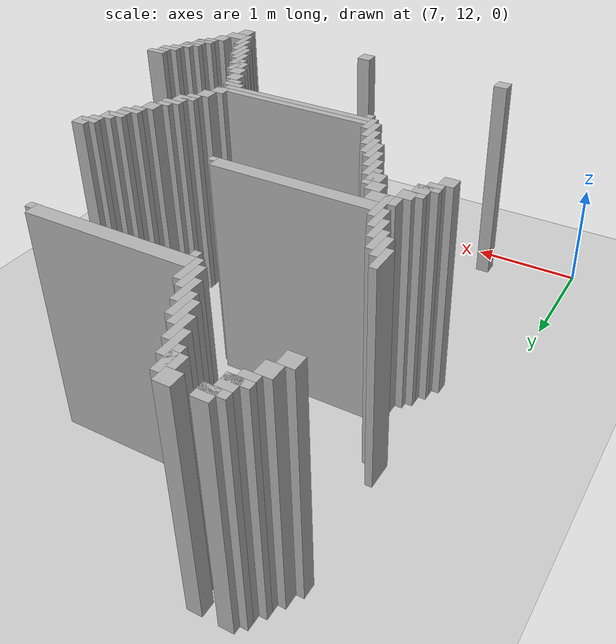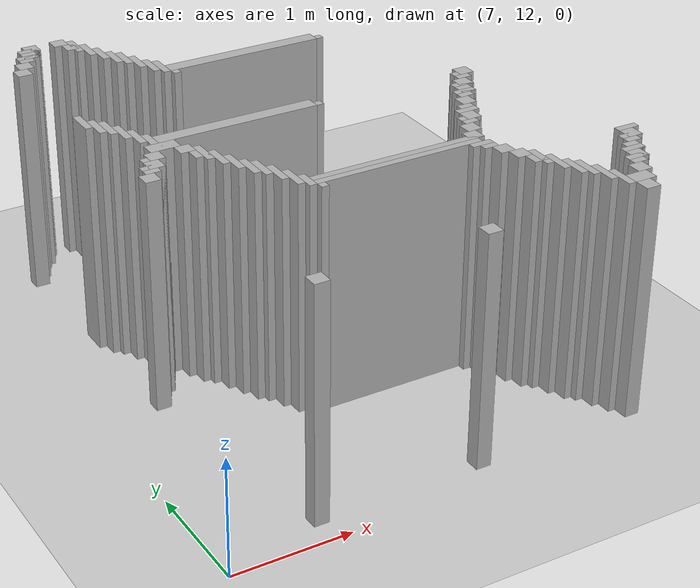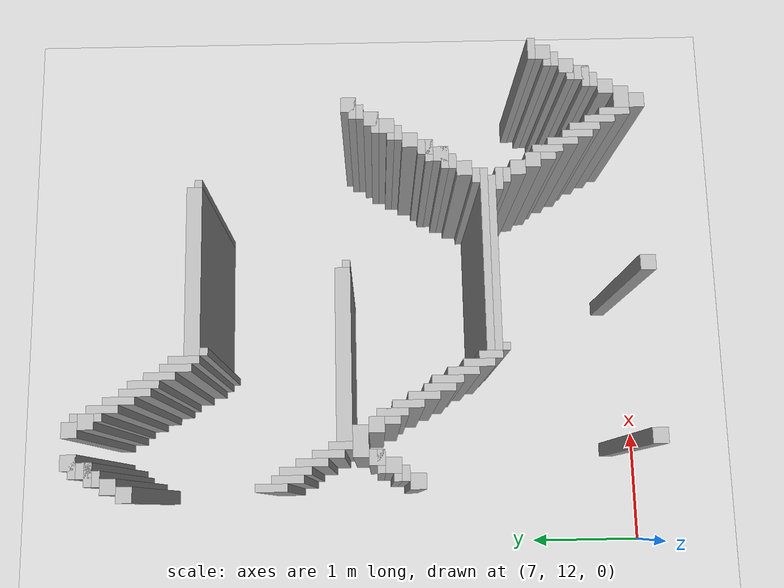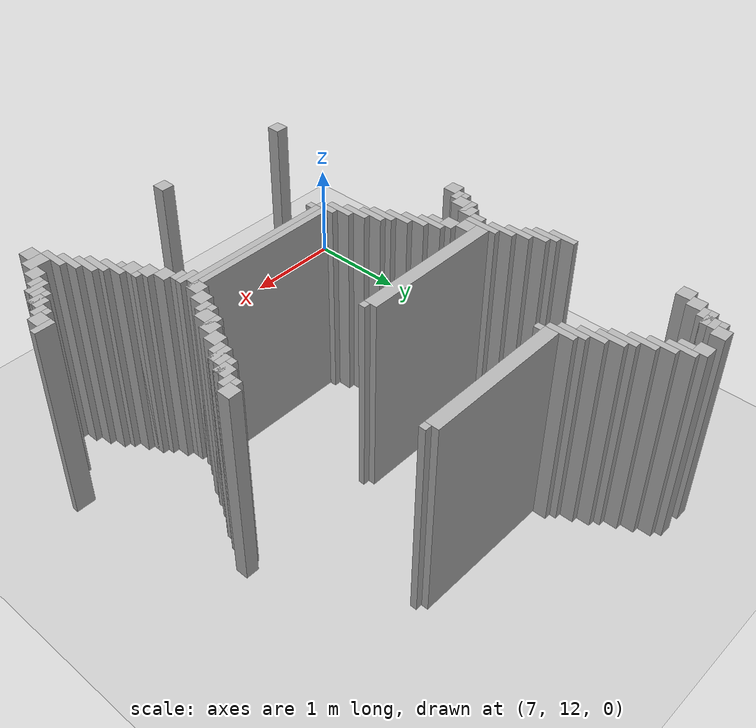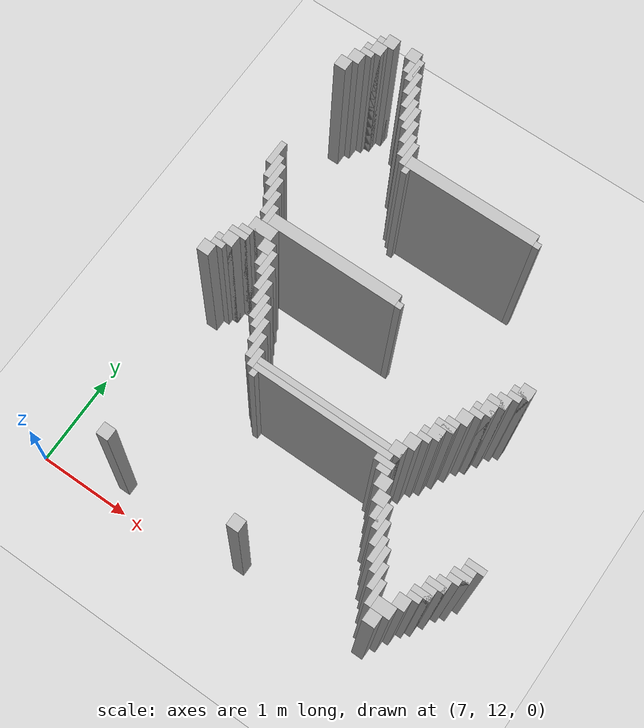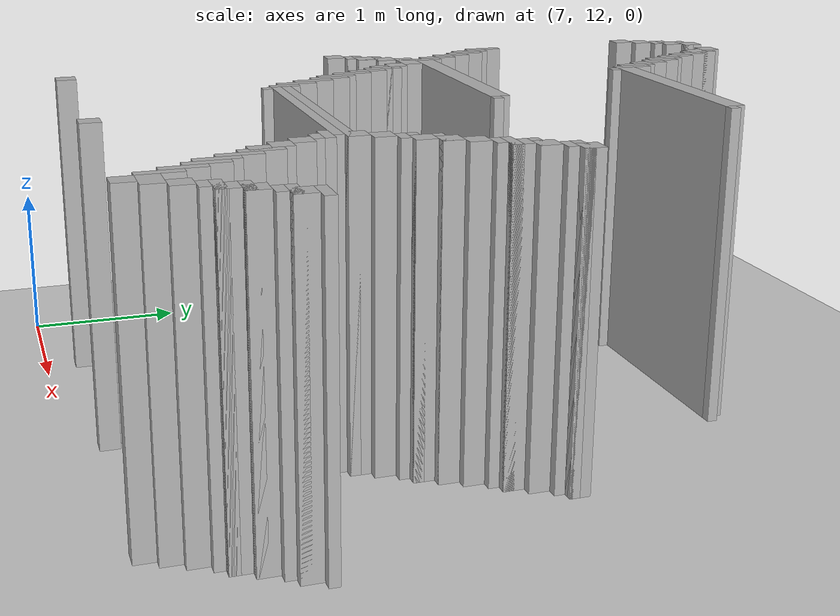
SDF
<sdf version="1.6">
 <world name="slam_world">
  <model name="ground_plane">
   <static>true</static>
   <link name="link">
    <collision name="collision">
     <geometry><plane><normal>0 0 1</normal><size>100 100</size></plane></geometry>
    </collision>
    <visual name="visual">
     <geometry><plane><normal>0 0 1</normal><size>100 100</size></plane></geometry>
     <material>
      <ambient>0.8 0.8 0.8 1</ambient>
      <diffuse>0.8 0.8 0.8 1</diffuse>
      <specular>0.8 0.8 0.8 1</specular>
     </material>
    </visual>
   </link>
  </model>
  <model name="wall_690">
   <static>true</static>
   <pose>7.723404255319148 16.914893617021274 1.0 0 0 0</pose>
   <link name="link">
    <collision name="collision">
     <geometry><box><size>0.1276595744680851 0.1276595744680851 2.0</size></box></geometry>
    </collision>
    <visual name="visual">
     <geometry><box><size>0.1276595744680851 0.1276595744680851 2.0</size></box></geometry>
     <material><ambient>0.5 0.5 0.5 1</ambient><diffuse>0.7 0.7 0.7 1</diffuse></material>
    </visual>
   </link>
  </model>
  <model name="wall_691">
   <static>true</static>
   <pose>7.978723404255319 16.914893617021274 1.0 0 0 0</pose>
   <link name="link">
    <collision name="collision">
     <geometry><box><size>0.1276595744680851 0.1276595744680851 2.0</size></box></geometry>
    </collision>
    <visual name="visual">
     <geometry><box><size>0.1276595744680851 0.1276595744680851 2.0</size></box></geometry>
     <material><ambient>0.5 0.5 0.5 1</ambient><diffuse>0.7 0.7 0.7 1</diffuse></material>
    </visual>
   </link>
  </model>
  <model name="wall_700">
   <static>true</static>
   <pose>7.691489361702127 16.882978723404253 1.0 0 0 0</pose>
   <link name="link">
    <collision name="collision">
     <geometry><box><size>0.19148936170212766 0.06382978723404255 2.0</size></box></geometry>
    </collision>
    <visual name="visual">
     <geometry><box><size>0.19148936170212766 0.06382978723404255 2.0</size></box></geometry>
     <material><ambient>0.5 0.5 0.5 1</ambient><diffuse>0.7 0.7 0.7 1</diffuse></material>
    </visual>
   </link>
  </model>
  <model name="wall_701">
   <static>true</static>
   <pose>8.074468085106382 16.78723404255319 1.0 0 0 0</pose>
   <link name="link">
    <collision name="collision">
     <geometry><box><size>0.06382978723404255 0.2553191489361702 2.0</size></box></geometry>
    </collision>
    <visual name="visual">
     <geometry><box><size>0.06382978723404255 0.2553191489361702 2.0</size></box></geometry>
     <material><ambient>0.5 0.5 0.5 1</ambient><diffuse>0.7 0.7 0.7 1</diffuse></material>
    </visual>
   </link>
  </model>
  <model name="wall_710">
   <static>true</static>
   <pose>7.659574468085106 16.78723404255319 1.0 0 0 0</pose>
   <link name="link">
    <collision name="collision">
     <geometry><box><size>0.1276595744680851 0.1276595744680851 2.0</size></box></geometry>
    </collision>
    <visual name="visual">
     <geometry><box><size>0.1276595744680851 0.1276595744680851 2.0</size></box></geometry>
     <material><ambient>0.5 0.5 0.5 1</ambient><diffuse>0.7 0.7 0.7 1</diffuse></material>
    </visual>
   </link>
  </model>
  <model name="wall_711">
   <static>true</static>
   <pose>8.042553191489361 16.78723404255319 1.0 0 0 0</pose>
   <link name="link">
    <collision name="collision">
     <geometry><box><size>0.1276595744680851 0.1276595744680851 2.0</size></box></geometry>
    </collision>
    <visual name="visual">
     <geometry><box><size>0.1276595744680851 0.1276595744680851 2.0</size></box></geometry>
     <material><ambient>0.5 0.5 0.5 1</ambient><diffuse>0.7 0.7 0.7 1</diffuse></material>
    </visual>
   </link>
  </model>
  <model name="wall_720">
   <static>true</static>
   <pose>7.627659574468084 16.75531914893617 1.0 0 0 0</pose>
   <link name="link">
    <collision name="collision">
     <geometry><box><size>0.19148936170212766 0.06382978723404255 2.0</size></box></geometry>
    </collision>
    <visual name="visual">
     <geometry><box><size>0.19148936170212766 0.06382978723404255 2.0</size></box></geometry>
     <material><ambient>0.5 0.5 0.5 1</ambient><diffuse>0.7 0.7 0.7 1</diffuse></material>
    </visual>
   </link>
  </model>
  <model name="wall_721">
   <static>true</static>
   <pose>8.138297872340425 16.659574468085104 1.0 0 0 0</pose>
   <link name="link">
    <collision name="collision">
     <geometry><box><size>0.06382978723404255 0.2553191489361702 2.0</size></box></geometry>
    </collision>
    <visual name="visual">
     <geometry><box><size>0.06382978723404255 0.2553191489361702 2.0</size></box></geometry>
     <material><ambient>0.5 0.5 0.5 1</ambient><diffuse>0.7 0.7 0.7 1</diffuse></material>
    </visual>
   </link>
  </model>
  <model name="wall_728">
   <static>true</static>
   <pose>7.595744680851063 16.691489361702125 1.0 0 0 0</pose>
   <link name="link">
    <collision name="collision">
     <geometry><box><size>0.1276595744680851 0.06382978723404255 2.0</size></box></geometry>
    </collision>
    <visual name="visual">
     <geometry><box><size>0.1276595744680851 0.06382978723404255 2.0</size></box></geometry>
     <material><ambient>0.5 0.5 0.5 1</ambient><diffuse>0.7 0.7 0.7 1</diffuse></material>
    </visual>
   </link>
  </model>
  <model name="wall_736">
   <static>true</static>
   <pose>7.531914893617021 16.595744680851062 1.0 0 0 0</pose>
   <link name="link">
    <collision name="collision">
     <geometry><box><size>0.1276595744680851 0.1276595744680851 2.0</size></box></geometry>
    </collision>
    <visual name="visual">
     <geometry><box><size>0.1276595744680851 0.1276595744680851 2.0</size></box></geometry>
     <material><ambient>0.5 0.5 0.5 1</ambient><diffuse>0.7 0.7 0.7 1</diffuse></material>
    </visual>
   </link>
  </model>
  <model name="wall_737">
   <static>true</static>
   <pose>8.202127659574467 16.53191489361702 1.0 0 0 0</pose>
   <link name="link">
    <collision name="collision">
     <geometry><box><size>0.06382978723404255 0.2553191489361702 2.0</size></box></geometry>
    </collision>
    <visual name="visual">
     <geometry><box><size>0.06382978723404255 0.2553191489361702 2.0</size></box></geometry>
     <material><ambient>0.5 0.5 0.5 1</ambient><diffuse>0.7 0.7 0.7 1</diffuse></material>
    </visual>
   </link>
  </model>
  <model name="wall_746">
   <static>true</static>
   <pose>7.468085106382978 16.46808510638298 1.0 0 0 0</pose>
   <link name="link">
    <collision name="collision">
     <geometry><box><size>0.1276595744680851 0.1276595744680851 2.0</size></box></geometry>
    </collision>
    <visual name="visual">
     <geometry><box><size>0.1276595744680851 0.1276595744680851 2.0</size></box></geometry>
     <material><ambient>0.5 0.5 0.5 1</ambient><diffuse>0.7 0.7 0.7 1</diffuse></material>
    </visual>
   </link>
  </model>
  <model name="wall_747">
   <static>true</static>
   <pose>8.26595744680851 16.404255319148934 1.0 0 0 0</pose>
   <link name="link">
    <collision name="collision">
     <geometry><box><size>0.06382978723404255 0.2553191489361702 2.0</size></box></geometry>
    </collision>
    <visual name="visual">
     <geometry><box><size>0.06382978723404255 0.2553191489361702 2.0</size></box></geometry>
     <material><ambient>0.5 0.5 0.5 1</ambient><diffuse>0.7 0.7 0.7 1</diffuse></material>
    </visual>
   </link>
  </model>
  <model name="wall_757">
   <static>true</static>
   <pose>8.329787234042552 16.340425531914892 1.0 0 0 0</pose>
   <link name="link">
    <collision name="collision">
     <geometry><box><size>0.06382978723404255 0.2553191489361702 2.0</size></box></geometry>
    </collision>
    <visual name="visual">
     <geometry><box><size>0.06382978723404255 0.2553191489361702 2.0</size></box></geometry>
     <material><ambient>0.5 0.5 0.5 1</ambient><diffuse>0.7 0.7 0.7 1</diffuse></material>
    </visual>
   </link>
  </model>
  <model name="wall_773">
   <static>true</static>
   <pose>8.393617021276595 16.212765957446805 1.0 0 0 0</pose>
   <link name="link">
    <collision name="collision">
     <geometry><box><size>0.06382978723404255 0.2553191489361702 2.0</size></box></geometry>
    </collision>
    <visual name="visual">
     <geometry><box><size>0.06382978723404255 0.2553191489361702 2.0</size></box></geometry>
     <material><ambient>0.5 0.5 0.5 1</ambient><diffuse>0.7 0.7 0.7 1</diffuse></material>
    </visual>
   </link>
  </model>
  <model name="wall_789">
   <static>true</static>
   <pose>8.457446808510637 16.085106382978722 1.0 0 0 0</pose>
   <link name="link">
    <collision name="collision">
     <geometry><box><size>0.06382978723404255 0.2553191489361702 2.0</size></box></geometry>
    </collision>
    <visual name="visual">
     <geometry><box><size>0.06382978723404255 0.2553191489361702 2.0</size></box></geometry>
     <material><ambient>0.5 0.5 0.5 1</ambient><diffuse>0.7 0.7 0.7 1</diffuse></material>
    </visual>
   </link>
  </model>
  <model name="wall_799">
   <static>true</static>
   <pose>8.52127659574468 16.02127659574468 1.0 0 0 0</pose>
   <link name="link">
    <collision name="collision">
     <geometry><box><size>0.06382978723404255 0.2553191489361702 2.0</size></box></geometry>
    </collision>
    <visual name="visual">
     <geometry><box><size>0.06382978723404255 0.2553191489361702 2.0</size></box></geometry>
     <material><ambient>0.5 0.5 0.5 1</ambient><diffuse>0.7 0.7 0.7 1</diffuse></material>
    </visual>
   </link>
  </model>
  <model name="wall_812">
   <static>true</static>
   <pose>9.25531914893617 15.957446808510637 1.0 0 0 0</pose>
   <link name="link">
    <collision name="collision">
     <geometry><box><size>1.404255319148936 0.1276595744680851 2.0</size></box></geometry>
    </collision>
    <visual name="visual">
     <geometry><box><size>1.404255319148936 0.1276595744680851 2.0</size></box></geometry>
     <material><ambient>0.5 0.5 0.5 1</ambient><diffuse>0.7 0.7 0.7 1</diffuse></material>
    </visual>
   </link>
  </model>
  <model name="wall_818">
   <static>true</static>
   <pose>9.989361702127658 15.925531914893616 1.0 0 0 0</pose>
   <link name="link">
    <collision name="collision">
     <geometry><box><size>0.06382978723404255 0.06382978723404255 2.0</size></box></geometry>
    </collision>
    <visual name="visual">
     <geometry><box><size>0.06382978723404255 0.06382978723404255 2.0</size></box></geometry>
     <material><ambient>0.5 0.5 0.5 1</ambient><diffuse>0.7 0.7 0.7 1</diffuse></material>
    </visual>
   </link>
  </model>
  <model name="wall_827">
   <static>true</static>
   <pose>8.585106382978722 15.861702127659573 1.0 0 0 0</pose>
   <link name="link">
    <collision name="collision">
     <geometry><box><size>0.06382978723404255 0.06382978723404255 2.0</size></box></geometry>
    </collision>
    <visual name="visual">
     <geometry><box><size>0.06382978723404255 0.06382978723404255 2.0</size></box></geometry>
     <material><ambient>0.5 0.5 0.5 1</ambient><diffuse>0.7 0.7 0.7 1</diffuse></material>
    </visual>
   </link>
  </model>
  <model name="wall_857">
   <static>true</static>
   <pose>7.499999999999999 15.319148936170212 1.0 0 0 0</pose>
   <link name="link">
    <collision name="collision">
     <geometry><box><size>0.06382978723404255 0.2553191489361702 2.0</size></box></geometry>
    </collision>
    <visual name="visual">
     <geometry><box><size>0.06382978723404255 0.2553191489361702 2.0</size></box></geometry>
     <material><ambient>0.5 0.5 0.5 1</ambient><diffuse>0.7 0.7 0.7 1</diffuse></material>
    </visual>
   </link>
  </model>
  <model name="wall_863">
   <static>true</static>
   <pose>7.563829787234042 15.191489361702127 1.0 0 0 0</pose>
   <link name="link">
    <collision name="collision">
     <geometry><box><size>0.06382978723404255 0.2553191489361702 2.0</size></box></geometry>
    </collision>
    <visual name="visual">
     <geometry><box><size>0.06382978723404255 0.2553191489361702 2.0</size></box></geometry>
     <material><ambient>0.5 0.5 0.5 1</ambient><diffuse>0.7 0.7 0.7 1</diffuse></material>
    </visual>
   </link>
  </model>
  <model name="wall_869">
   <static>true</static>
   <pose>7.627659574468084 15.127659574468083 1.0 0 0 0</pose>
   <link name="link">
    <collision name="collision">
     <geometry><box><size>0.06382978723404255 0.2553191489361702 2.0</size></box></geometry>
    </collision>
    <visual name="visual">
     <geometry><box><size>0.06382978723404255 0.2553191489361702 2.0</size></box></geometry>
     <material><ambient>0.5 0.5 0.5 1</ambient><diffuse>0.7 0.7 0.7 1</diffuse></material>
    </visual>
   </link>
  </model>
  <model name="wall_876">
   <static>true</static>
   <pose>7.691489361702127 14.999999999999998 1.0 0 0 0</pose>
   <link name="link">
    <collision name="collision">
     <geometry><box><size>0.06382978723404255 0.2553191489361702 2.0</size></box></geometry>
    </collision>
    <visual name="visual">
     <geometry><box><size>0.06382978723404255 0.2553191489361702 2.0</size></box></geometry>
     <material><ambient>0.5 0.5 0.5 1</ambient><diffuse>0.7 0.7 0.7 1</diffuse></material>
    </visual>
   </link>
  </model>
  <model name="wall_883">
   <static>true</static>
   <pose>7.755319148936169 14.872340425531913 1.0 0 0 0</pose>
   <link name="link">
    <collision name="collision">
     <geometry><box><size>0.06382978723404255 0.2553191489361702 2.0</size></box></geometry>
    </collision>
    <visual name="visual">
     <geometry><box><size>0.06382978723404255 0.2553191489361702 2.0</size></box></geometry>
     <material><ambient>0.5 0.5 0.5 1</ambient><diffuse>0.7 0.7 0.7 1</diffuse></material>
    </visual>
   </link>
  </model>
  <model name="wall_889">
   <static>true</static>
   <pose>7.819148936170212 14.712765957446807 1.0 0 0 0</pose>
   <link name="link">
    <collision name="collision">
     <geometry><box><size>0.06382978723404255 0.3191489361702127 2.0</size></box></geometry>
    </collision>
    <visual name="visual">
     <geometry><box><size>0.06382978723404255 0.3191489361702127 2.0</size></box></geometry>
     <material><ambient>0.5 0.5 0.5 1</ambient><diffuse>0.7 0.7 0.7 1</diffuse></material>
    </visual>
   </link>
  </model>
  <model name="wall_894">
   <static>true</static>
   <pose>8.553191489361701 14.744680851063828 1.0 0 0 0</pose>
   <link name="link">
    <collision name="collision">
     <geometry><box><size>1.404255319148936 0.1276595744680851 2.0</size></box></geometry>
    </collision>
    <visual name="visual">
     <geometry><box><size>1.404255319148936 0.1276595744680851 2.0</size></box></geometry>
     <material><ambient>0.5 0.5 0.5 1</ambient><diffuse>0.7 0.7 0.7 1</diffuse></material>
    </visual>
   </link>
  </model>
  <model name="wall_900">
   <static>true</static>
   <pose>9.287234042553191 14.712765957446807 1.0 0 0 0</pose>
   <link name="link">
    <collision name="collision">
     <geometry><box><size>0.06382978723404255 0.06382978723404255 2.0</size></box></geometry>
    </collision>
    <visual name="visual">
     <geometry><box><size>0.06382978723404255 0.06382978723404255 2.0</size></box></geometry>
     <material><ambient>0.5 0.5 0.5 1</ambient><diffuse>0.7 0.7 0.7 1</diffuse></material>
    </visual>
   </link>
  </model>
  <model name="wall_901">
   <static>true</static>
   <pose>10.659574468085106 14.680851063829786 1.0 0 0 0</pose>
   <link name="link">
    <collision name="collision">
     <geometry><box><size>0.1276595744680851 0.1276595744680851 2.0</size></box></geometry>
    </collision>
    <visual name="visual">
     <geometry><box><size>0.1276595744680851 0.1276595744680851 2.0</size></box></geometry>
     <material><ambient>0.5 0.5 0.5 1</ambient><diffuse>0.7 0.7 0.7 1</diffuse></material>
    </visual>
   </link>
  </model>
  <model name="wall_906">
   <static>true</static>
   <pose>7.8510638297872335 14.617021276595743 1.0 0 0 0</pose>
   <link name="link">
    <collision name="collision">
     <geometry><box><size>0.2553191489361702 0.1276595744680851 2.0</size></box></geometry>
    </collision>
    <visual name="visual">
     <geometry><box><size>0.2553191489361702 0.1276595744680851 2.0</size></box></geometry>
     <material><ambient>0.5 0.5 0.5 1</ambient><diffuse>0.7 0.7 0.7 1</diffuse></material>
    </visual>
   </link>
  </model>
  <model name="wall_907">
   <static>true</static>
   <pose>10.627659574468085 14.648936170212766 1.0 0 0 0</pose>
   <link name="link">
    <collision name="collision">
     <geometry><box><size>0.19148936170212766 0.06382978723404255 2.0</size></box></geometry>
    </collision>
    <visual name="visual">
     <geometry><box><size>0.19148936170212766 0.06382978723404255 2.0</size></box></geometry>
     <material><ambient>0.5 0.5 0.5 1</ambient><diffuse>0.7 0.7 0.7 1</diffuse></material>
    </visual>
   </link>
  </model>
  <model name="wall_913">
   <static>true</static>
   <pose>10.595744680851062 14.585106382978722 1.0 0 0 0</pose>
   <link name="link">
    <collision name="collision">
     <geometry><box><size>0.1276595744680851 0.06382978723404255 2.0</size></box></geometry>
    </collision>
    <visual name="visual">
     <geometry><box><size>0.1276595744680851 0.06382978723404255 2.0</size></box></geometry>
     <material><ambient>0.5 0.5 0.5 1</ambient><diffuse>0.7 0.7 0.7 1</diffuse></material>
    </visual>
   </link>
  </model>
  <model name="wall_919">
   <static>true</static>
   <pose>7.723404255319148 14.489361702127658 1.0 0 0 0</pose>
   <link name="link">
    <collision name="collision">
     <geometry><box><size>0.1276595744680851 0.1276595744680851 2.0</size></box></geometry>
    </collision>
    <visual name="visual">
     <geometry><box><size>0.1276595744680851 0.1276595744680851 2.0</size></box></geometry>
     <material><ambient>0.5 0.5 0.5 1</ambient><diffuse>0.7 0.7 0.7 1</diffuse></material>
    </visual>
   </link>
  </model>
  <model name="wall_920">
   <static>true</static>
   <pose>7.978723404255319 14.489361702127658 1.0 0 0 0</pose>
   <link name="link">
    <collision name="collision">
     <geometry><box><size>0.1276595744680851 0.1276595744680851 2.0</size></box></geometry>
    </collision>
    <visual name="visual">
     <geometry><box><size>0.1276595744680851 0.1276595744680851 2.0</size></box></geometry>
     <material><ambient>0.5 0.5 0.5 1</ambient><diffuse>0.7 0.7 0.7 1</diffuse></material>
    </visual>
   </link>
  </model>
  <model name="wall_921">
   <static>true</static>
   <pose>10.53191489361702 14.489361702127658 1.0 0 0 0</pose>
   <link name="link">
    <collision name="collision">
     <geometry><box><size>0.1276595744680851 0.1276595744680851 2.0</size></box></geometry>
    </collision>
    <visual name="visual">
     <geometry><box><size>0.1276595744680851 0.1276595744680851 2.0</size></box></geometry>
     <material><ambient>0.5 0.5 0.5 1</ambient><diffuse>0.7 0.7 0.7 1</diffuse></material>
    </visual>
   </link>
  </model>
  <model name="wall_927">
   <static>true</static>
   <pose>7.691489361702127 14.457446808510637 1.0 0 0 0</pose>
   <link name="link">
    <collision name="collision">
     <geometry><box><size>0.19148936170212766 0.06382978723404255 2.0</size></box></geometry>
    </collision>
    <visual name="visual">
     <geometry><box><size>0.19148936170212766 0.06382978723404255 2.0</size></box></geometry>
     <material><ambient>0.5 0.5 0.5 1</ambient><diffuse>0.7 0.7 0.7 1</diffuse></material>
    </visual>
   </link>
  </model>
  <model name="wall_928">
   <static>true</static>
   <pose>8.074468085106382 14.361702127659573 1.0 0 0 0</pose>
   <link name="link">
    <collision name="collision">
     <geometry><box><size>0.06382978723404255 0.2553191489361702 2.0</size></box></geometry>
    </collision>
    <visual name="visual">
     <geometry><box><size>0.06382978723404255 0.2553191489361702 2.0</size></box></geometry>
     <material><ambient>0.5 0.5 0.5 1</ambient><diffuse>0.7 0.7 0.7 1</diffuse></material>
    </visual>
   </link>
  </model>
  <model name="wall_929">
   <static>true</static>
   <pose>10.5 14.457446808510637 1.0 0 0 0</pose>
   <link name="link">
    <collision name="collision">
     <geometry><box><size>0.19148936170212766 0.06382978723404255 2.0</size></box></geometry>
    </collision>
    <visual name="visual">
     <geometry><box><size>0.19148936170212766 0.06382978723404255 2.0</size></box></geometry>
     <material><ambient>0.5 0.5 0.5 1</ambient><diffuse>0.7 0.7 0.7 1</diffuse></material>
    </visual>
   </link>
  </model>
  <model name="wall_935">
   <static>true</static>
   <pose>7.659574468085106 14.361702127659573 1.0 0 0 0</pose>
   <link name="link">
    <collision name="collision">
     <geometry><box><size>0.1276595744680851 0.1276595744680851 2.0</size></box></geometry>
    </collision>
    <visual name="visual">
     <geometry><box><size>0.1276595744680851 0.1276595744680851 2.0</size></box></geometry>
     <material><ambient>0.5 0.5 0.5 1</ambient><diffuse>0.7 0.7 0.7 1</diffuse></material>
    </visual>
   </link>
  </model>
  <model name="wall_936">
   <static>true</static>
   <pose>8.042553191489361 14.361702127659573 1.0 0 0 0</pose>
   <link name="link">
    <collision name="collision">
     <geometry><box><size>0.1276595744680851 0.1276595744680851 2.0</size></box></geometry>
    </collision>
    <visual name="visual">
     <geometry><box><size>0.1276595744680851 0.1276595744680851 2.0</size></box></geometry>
     <material><ambient>0.5 0.5 0.5 1</ambient><diffuse>0.7 0.7 0.7 1</diffuse></material>
    </visual>
   </link>
  </model>
  <model name="wall_937">
   <static>true</static>
   <pose>10.468085106382977 14.361702127659573 1.0 0 0 0</pose>
   <link name="link">
    <collision name="collision">
     <geometry><box><size>0.1276595744680851 0.1276595744680851 2.0</size></box></geometry>
    </collision>
    <visual name="visual">
     <geometry><box><size>0.1276595744680851 0.1276595744680851 2.0</size></box></geometry>
     <material><ambient>0.5 0.5 0.5 1</ambient><diffuse>0.7 0.7 0.7 1</diffuse></material>
    </visual>
   </link>
  </model>
  <model name="wall_943">
   <static>true</static>
   <pose>7.627659574468084 14.329787234042552 1.0 0 0 0</pose>
   <link name="link">
    <collision name="collision">
     <geometry><box><size>0.19148936170212766 0.06382978723404255 2.0</size></box></geometry>
    </collision>
    <visual name="visual">
     <geometry><box><size>0.19148936170212766 0.06382978723404255 2.0</size></box></geometry>
     <material><ambient>0.5 0.5 0.5 1</ambient><diffuse>0.7 0.7 0.7 1</diffuse></material>
    </visual>
   </link>
  </model>
  <model name="wall_944">
   <static>true</static>
   <pose>8.138297872340425 14.234042553191488 1.0 0 0 0</pose>
   <link name="link">
    <collision name="collision">
     <geometry><box><size>0.06382978723404255 0.2553191489361702 2.0</size></box></geometry>
    </collision>
    <visual name="visual">
     <geometry><box><size>0.06382978723404255 0.2553191489361702 2.0</size></box></geometry>
     <material><ambient>0.5 0.5 0.5 1</ambient><diffuse>0.7 0.7 0.7 1</diffuse></material>
    </visual>
   </link>
  </model>
  <model name="wall_945">
   <static>true</static>
   <pose>10.436170212765957 14.329787234042552 1.0 0 0 0</pose>
   <link name="link">
    <collision name="collision">
     <geometry><box><size>0.19148936170212766 0.06382978723404255 2.0</size></box></geometry>
    </collision>
    <visual name="visual">
     <geometry><box><size>0.19148936170212766 0.06382978723404255 2.0</size></box></geometry>
     <material><ambient>0.5 0.5 0.5 1</ambient><diffuse>0.7 0.7 0.7 1</diffuse></material>
    </visual>
   </link>
  </model>
  <model name="wall_951">
   <static>true</static>
   <pose>7.595744680851063 14.265957446808509 1.0 0 0 0</pose>
   <link name="link">
    <collision name="collision">
     <geometry><box><size>0.1276595744680851 0.06382978723404255 2.0</size></box></geometry>
    </collision>
    <visual name="visual">
     <geometry><box><size>0.1276595744680851 0.06382978723404255 2.0</size></box></geometry>
     <material><ambient>0.5 0.5 0.5 1</ambient><diffuse>0.7 0.7 0.7 1</diffuse></material>
    </visual>
   </link>
  </model>
  <model name="wall_952">
   <static>true</static>
   <pose>10.404255319148936 14.265957446808509 1.0 0 0 0</pose>
   <link name="link">
    <collision name="collision">
     <geometry><box><size>0.1276595744680851 0.06382978723404255 2.0</size></box></geometry>
    </collision>
    <visual name="visual">
     <geometry><box><size>0.1276595744680851 0.06382978723404255 2.0</size></box></geometry>
     <material><ambient>0.5 0.5 0.5 1</ambient><diffuse>0.7 0.7 0.7 1</diffuse></material>
    </visual>
   </link>
  </model>
  <model name="wall_958">
   <static>true</static>
   <pose>7.531914893617021 14.170212765957446 1.0 0 0 0</pose>
   <link name="link">
    <collision name="collision">
     <geometry><box><size>0.1276595744680851 0.1276595744680851 2.0</size></box></geometry>
    </collision>
    <visual name="visual">
     <geometry><box><size>0.1276595744680851 0.1276595744680851 2.0</size></box></geometry>
     <material><ambient>0.5 0.5 0.5 1</ambient><diffuse>0.7 0.7 0.7 1</diffuse></material>
    </visual>
   </link>
  </model>
  <model name="wall_959">
   <static>true</static>
   <pose>8.202127659574467 14.106382978723403 1.0 0 0 0</pose>
   <link name="link">
    <collision name="collision">
     <geometry><box><size>0.06382978723404255 0.2553191489361702 2.0</size></box></geometry>
    </collision>
    <visual name="visual">
     <geometry><box><size>0.06382978723404255 0.2553191489361702 2.0</size></box></geometry>
     <material><ambient>0.5 0.5 0.5 1</ambient><diffuse>0.7 0.7 0.7 1</diffuse></material>
    </visual>
   </link>
  </model>
  <model name="wall_960">
   <static>true</static>
   <pose>10.340425531914892 14.170212765957446 1.0 0 0 0</pose>
   <link name="link">
    <collision name="collision">
     <geometry><box><size>0.1276595744680851 0.1276595744680851 2.0</size></box></geometry>
    </collision>
    <visual name="visual">
     <geometry><box><size>0.1276595744680851 0.1276595744680851 2.0</size></box></geometry>
     <material><ambient>0.5 0.5 0.5 1</ambient><diffuse>0.7 0.7 0.7 1</diffuse></material>
    </visual>
   </link>
  </model>
  <model name="wall_967">
   <static>true</static>
   <pose>8.26595744680851 13.978723404255318 1.0 0 0 0</pose>
   <link name="link">
    <collision name="collision">
     <geometry><box><size>0.06382978723404255 0.2553191489361702 2.0</size></box></geometry>
    </collision>
    <visual name="visual">
     <geometry><box><size>0.06382978723404255 0.2553191489361702 2.0</size></box></geometry>
     <material><ambient>0.5 0.5 0.5 1</ambient><diffuse>0.7 0.7 0.7 1</diffuse></material>
    </visual>
   </link>
  </model>
  <model name="wall_968">
   <static>true</static>
   <pose>10.27659574468085 14.042553191489361 1.0 0 0 0</pose>
   <link name="link">
    <collision name="collision">
     <geometry><box><size>0.1276595744680851 0.1276595744680851 2.0</size></box></geometry>
    </collision>
    <visual name="visual">
     <geometry><box><size>0.1276595744680851 0.1276595744680851 2.0</size></box></geometry>
     <material><ambient>0.5 0.5 0.5 1</ambient><diffuse>0.7 0.7 0.7 1</diffuse></material>
    </visual>
   </link>
  </model>
  <model name="wall_975">
   <static>true</static>
   <pose>8.329787234042552 13.914893617021276 1.0 0 0 0</pose>
   <link name="link">
    <collision name="collision">
     <geometry><box><size>0.06382978723404255 0.2553191489361702 2.0</size></box></geometry>
    </collision>
    <visual name="visual">
     <geometry><box><size>0.06382978723404255 0.2553191489361702 2.0</size></box></geometry>
     <material><ambient>0.5 0.5 0.5 1</ambient><diffuse>0.7 0.7 0.7 1</diffuse></material>
    </visual>
   </link>
  </model>
  <model name="wall_976">
   <static>true</static>
   <pose>10.24468085106383 14.010638297872338 1.0 0 0 0</pose>
   <link name="link">
    <collision name="collision">
     <geometry><box><size>0.19148936170212766 0.06382978723404255 2.0</size></box></geometry>
    </collision>
    <visual name="visual">
     <geometry><box><size>0.19148936170212766 0.06382978723404255 2.0</size></box></geometry>
     <material><ambient>0.5 0.5 0.5 1</ambient><diffuse>0.7 0.7 0.7 1</diffuse></material>
    </visual>
   </link>
  </model>
  <model name="wall_983">
   <static>true</static>
   <pose>10.212765957446807 13.914893617021276 1.0 0 0 0</pose>
   <link name="link">
    <collision name="collision">
     <geometry><box><size>0.1276595744680851 0.1276595744680851 2.0</size></box></geometry>
    </collision>
    <visual name="visual">
     <geometry><box><size>0.1276595744680851 0.1276595744680851 2.0</size></box></geometry>
     <material><ambient>0.5 0.5 0.5 1</ambient><diffuse>0.7 0.7 0.7 1</diffuse></material>
    </visual>
   </link>
  </model>
  <model name="wall_990">
   <static>true</static>
   <pose>8.393617021276595 13.787234042553191 1.0 0 0 0</pose>
   <link name="link">
    <collision name="collision">
     <geometry><box><size>0.06382978723404255 0.2553191489361702 2.0</size></box></geometry>
    </collision>
    <visual name="visual">
     <geometry><box><size>0.06382978723404255 0.2553191489361702 2.0</size></box></geometry>
     <material><ambient>0.5 0.5 0.5 1</ambient><diffuse>0.7 0.7 0.7 1</diffuse></material>
    </visual>
   </link>
  </model>
  <model name="wall_991">
   <static>true</static>
   <pose>10.180851063829786 13.882978723404253 1.0 0 0 0</pose>
   <link name="link">
    <collision name="collision">
     <geometry><box><size>0.19148936170212766 0.06382978723404255 2.0</size></box></geometry>
    </collision>
    <visual name="visual">
     <geometry><box><size>0.19148936170212766 0.06382978723404255 2.0</size></box></geometry>
     <material><ambient>0.5 0.5 0.5 1</ambient><diffuse>0.7 0.7 0.7 1</diffuse></material>
    </visual>
   </link>
  </model>
  <model name="wall_998">
   <static>true</static>
   <pose>10.148936170212766 13.819148936170212 1.0 0 0 0</pose>
   <link name="link">
    <collision name="collision">
     <geometry><box><size>0.1276595744680851 0.06382978723404255 2.0</size></box></geometry>
    </collision>
    <visual name="visual">
     <geometry><box><size>0.1276595744680851 0.06382978723404255 2.0</size></box></geometry>
     <material><ambient>0.5 0.5 0.5 1</ambient><diffuse>0.7 0.7 0.7 1</diffuse></material>
    </visual>
   </link>
  </model>
  <model name="wall_1005">
   <static>true</static>
   <pose>8.457446808510637 13.659574468085106 1.0 0 0 0</pose>
   <link name="link">
    <collision name="collision">
     <geometry><box><size>0.06382978723404255 0.2553191489361702 2.0</size></box></geometry>
    </collision>
    <visual name="visual">
     <geometry><box><size>0.06382978723404255 0.2553191489361702 2.0</size></box></geometry>
     <material><ambient>0.5 0.5 0.5 1</ambient><diffuse>0.7 0.7 0.7 1</diffuse></material>
    </visual>
   </link>
  </model>
  <model name="wall_1006">
   <static>true</static>
   <pose>10.085106382978722 13.723404255319148 1.0 0 0 0</pose>
   <link name="link">
    <collision name="collision">
     <geometry><box><size>0.1276595744680851 0.1276595744680851 2.0</size></box></geometry>
    </collision>
    <visual name="visual">
     <geometry><box><size>0.1276595744680851 0.1276595744680851 2.0</size></box></geometry>
     <material><ambient>0.5 0.5 0.5 1</ambient><diffuse>0.7 0.7 0.7 1</diffuse></material>
    </visual>
   </link>
  </model>
  <model name="wall_1013">
   <static>true</static>
   <pose>8.52127659574468 13.563829787234042 1.0 0 0 0</pose>
   <link name="link">
    <collision name="collision">
     <geometry><box><size>0.06382978723404255 0.19148936170212766 2.0</size></box></geometry>
    </collision>
    <visual name="visual">
     <geometry><box><size>0.06382978723404255 0.19148936170212766 2.0</size></box></geometry>
     <material><ambient>0.5 0.5 0.5 1</ambient><diffuse>0.7 0.7 0.7 1</diffuse></material>
    </visual>
   </link>
  </model>
  <model name="wall_1014">
   <static>true</static>
   <pose>10.02127659574468 13.595744680851062 1.0 0 0 0</pose>
   <link name="link">
    <collision name="collision">
     <geometry><box><size>0.1276595744680851 0.1276595744680851 2.0</size></box></geometry>
    </collision>
    <visual name="visual">
     <geometry><box><size>0.1276595744680851 0.1276595744680851 2.0</size></box></geometry>
     <material><ambient>0.5 0.5 0.5 1</ambient><diffuse>0.7 0.7 0.7 1</diffuse></material>
    </visual>
   </link>
  </model>
  <model name="wall_1022">
   <static>true</static>
   <pose>9.319148936170212 13.563829787234042 1.0 0 0 0</pose>
   <link name="link">
    <collision name="collision">
     <geometry><box><size>1.5319148936170213 0.06382978723404255 2.0</size></box></geometry>
    </collision>
    <visual name="visual">
     <geometry><box><size>1.5319148936170213 0.06382978723404255 2.0</size></box></geometry>
     <material><ambient>0.5 0.5 0.5 1</ambient><diffuse>0.7 0.7 0.7 1</diffuse></material>
    </visual>
   </link>
  </model>
  <model name="wall_1031">
   <static>true</static>
   <pose>9.287234042553191 13.499999999999998 1.0 0 0 0</pose>
   <link name="link">
    <collision name="collision">
     <geometry><box><size>1.4680851063829785 0.06382978723404255 2.0</size></box></geometry>
    </collision>
    <visual name="visual">
     <geometry><box><size>1.4680851063829785 0.06382978723404255 2.0</size></box></geometry>
     <material><ambient>0.5 0.5 0.5 1</ambient><diffuse>0.7 0.7 0.7 1</diffuse></material>
    </visual>
   </link>
  </model>
  <model name="wall_1038">
   <static>true</static>
   <pose>8.585106382978722 13.436170212765957 1.0 0 0 0</pose>
   <link name="link">
    <collision name="collision">
     <geometry><box><size>0.06382978723404255 0.06382978723404255 2.0</size></box></geometry>
    </collision>
    <visual name="visual">
     <geometry><box><size>0.06382978723404255 0.06382978723404255 2.0</size></box></geometry>
     <material><ambient>0.5 0.5 0.5 1</ambient><diffuse>0.7 0.7 0.7 1</diffuse></material>
    </visual>
   </link>
  </model>
  <model name="wall_1039">
   <static>true</static>
   <pose>9.989361702127658 13.436170212765957 1.0 0 0 0</pose>
   <link name="link">
    <collision name="collision">
     <geometry><box><size>0.19148936170212766 0.06382978723404255 2.0</size></box></geometry>
    </collision>
    <visual name="visual">
     <geometry><box><size>0.19148936170212766 0.06382978723404255 2.0</size></box></geometry>
     <material><ambient>0.5 0.5 0.5 1</ambient><diffuse>0.7 0.7 0.7 1</diffuse></material>
    </visual>
   </link>
  </model>
  <model name="wall_1047">
   <static>true</static>
   <pose>10.02127659574468 13.372340425531913 1.0 0 0 0</pose>
   <link name="link">
    <collision name="collision">
     <geometry><box><size>0.1276595744680851 0.06382978723404255 2.0</size></box></geometry>
    </collision>
    <visual name="visual">
     <geometry><box><size>0.1276595744680851 0.06382978723404255 2.0</size></box></geometry>
     <material><ambient>0.5 0.5 0.5 1</ambient><diffuse>0.7 0.7 0.7 1</diffuse></material>
    </visual>
   </link>
  </model>
  <model name="wall_1053">
   <static>true</static>
   <pose>10.085106382978722 13.27659574468085 1.0 0 0 0</pose>
   <link name="link">
    <collision name="collision">
     <geometry><box><size>0.1276595744680851 0.1276595744680851 2.0</size></box></geometry>
    </collision>
    <visual name="visual">
     <geometry><box><size>0.1276595744680851 0.1276595744680851 2.0</size></box></geometry>
     <material><ambient>0.5 0.5 0.5 1</ambient><diffuse>0.7 0.7 0.7 1</diffuse></material>
    </visual>
   </link>
  </model>
  <model name="wall_1063">
   <static>true</static>
   <pose>10.148936170212766 13.148936170212766 1.0 0 0 0</pose>
   <link name="link">
    <collision name="collision">
     <geometry><box><size>0.1276595744680851 0.1276595744680851 2.0</size></box></geometry>
    </collision>
    <visual name="visual">
     <geometry><box><size>0.1276595744680851 0.1276595744680851 2.0</size></box></geometry>
     <material><ambient>0.5 0.5 0.5 1</ambient><diffuse>0.7 0.7 0.7 1</diffuse></material>
    </visual>
   </link>
  </model>
  <model name="wall_1073">
   <static>true</static>
   <pose>10.24468085106383 13.02127659574468 1.0 0 0 0</pose>
   <link name="link">
    <collision name="collision">
     <geometry><box><size>0.06382978723404255 0.2553191489361702 2.0</size></box></geometry>
    </collision>
    <visual name="visual">
     <geometry><box><size>0.06382978723404255 0.2553191489361702 2.0</size></box></geometry>
     <material><ambient>0.5 0.5 0.5 1</ambient><diffuse>0.7 0.7 0.7 1</diffuse></material>
    </visual>
   </link>
  </model>
  <model name="wall_1074">
   <static>true</static>
   <pose>11.138297872340425 13.117021276595743 1.0 0 0 0</pose>
   <link name="link">
    <collision name="collision">
     <geometry><box><size>0.19148936170212766 0.06382978723404255 2.0</size></box></geometry>
    </collision>
    <visual name="visual">
     <geometry><box><size>0.19148936170212766 0.06382978723404255 2.0</size></box></geometry>
     <material><ambient>0.5 0.5 0.5 1</ambient><diffuse>0.7 0.7 0.7 1</diffuse></material>
    </visual>
   </link>
  </model>
  <model name="wall_1081">
   <static>true</static>
   <pose>10.212765957446807 13.02127659574468 1.0 0 0 0</pose>
   <link name="link">
    <collision name="collision">
     <geometry><box><size>0.1276595744680851 0.1276595744680851 2.0</size></box></geometry>
    </collision>
    <visual name="visual">
     <geometry><box><size>0.1276595744680851 0.1276595744680851 2.0</size></box></geometry>
     <material><ambient>0.5 0.5 0.5 1</ambient><diffuse>0.7 0.7 0.7 1</diffuse></material>
    </visual>
   </link>
  </model>
  <model name="wall_1082">
   <static>true</static>
   <pose>11.106382978723403 13.02127659574468 1.0 0 0 0</pose>
   <link name="link">
    <collision name="collision">
     <geometry><box><size>0.1276595744680851 0.1276595744680851 2.0</size></box></geometry>
    </collision>
    <visual name="visual">
     <geometry><box><size>0.1276595744680851 0.1276595744680851 2.0</size></box></geometry>
     <material><ambient>0.5 0.5 0.5 1</ambient><diffuse>0.7 0.7 0.7 1</diffuse></material>
    </visual>
   </link>
  </model>
  <model name="wall_1090">
   <static>true</static>
   <pose>10.308510638297872 12.893617021276595 1.0 0 0 0</pose>
   <link name="link">
    <collision name="collision">
     <geometry><box><size>0.06382978723404255 0.2553191489361702 2.0</size></box></geometry>
    </collision>
    <visual name="visual">
     <geometry><box><size>0.06382978723404255 0.2553191489361702 2.0</size></box></geometry>
     <material><ambient>0.5 0.5 0.5 1</ambient><diffuse>0.7 0.7 0.7 1</diffuse></material>
    </visual>
   </link>
  </model>
  <model name="wall_1091">
   <static>true</static>
   <pose>11.074468085106382 12.989361702127658 1.0 0 0 0</pose>
   <link name="link">
    <collision name="collision">
     <geometry><box><size>0.19148936170212766 0.06382978723404255 2.0</size></box></geometry>
    </collision>
    <visual name="visual">
     <geometry><box><size>0.19148936170212766 0.06382978723404255 2.0</size></box></geometry>
     <material><ambient>0.5 0.5 0.5 1</ambient><diffuse>0.7 0.7 0.7 1</diffuse></material>
    </visual>
   </link>
  </model>
  <model name="wall_1097">
   <static>true</static>
   <pose>11.042553191489361 12.925531914893616 1.0 0 0 0</pose>
   <link name="link">
    <collision name="collision">
     <geometry><box><size>0.1276595744680851 0.06382978723404255 2.0</size></box></geometry>
    </collision>
    <visual name="visual">
     <geometry><box><size>0.1276595744680851 0.06382978723404255 2.0</size></box></geometry>
     <material><ambient>0.5 0.5 0.5 1</ambient><diffuse>0.7 0.7 0.7 1</diffuse></material>
    </visual>
   </link>
  </model>
  <model name="wall_1103">
   <static>true</static>
   <pose>10.372340425531915 12.76595744680851 1.0 0 0 0</pose>
   <link name="link">
    <collision name="collision">
     <geometry><box><size>0.06382978723404255 0.2553191489361702 2.0</size></box></geometry>
    </collision>
    <visual name="visual">
     <geometry><box><size>0.06382978723404255 0.2553191489361702 2.0</size></box></geometry>
     <material><ambient>0.5 0.5 0.5 1</ambient><diffuse>0.7 0.7 0.7 1</diffuse></material>
    </visual>
   </link>
  </model>
  <model name="wall_1104">
   <static>true</static>
   <pose>10.978723404255318 12.829787234042552 1.0 0 0 0</pose>
   <link name="link">
    <collision name="collision">
     <geometry><box><size>0.1276595744680851 0.1276595744680851 2.0</size></box></geometry>
    </collision>
    <visual name="visual">
     <geometry><box><size>0.1276595744680851 0.1276595744680851 2.0</size></box></geometry>
     <material><ambient>0.5 0.5 0.5 1</ambient><diffuse>0.7 0.7 0.7 1</diffuse></material>
    </visual>
   </link>
  </model>
  <model name="wall_1113">
   <static>true</static>
   <pose>10.436170212765957 12.702127659574467 1.0 0 0 0</pose>
   <link name="link">
    <collision name="collision">
     <geometry><box><size>0.06382978723404255 0.2553191489361702 2.0</size></box></geometry>
    </collision>
    <visual name="visual">
     <geometry><box><size>0.06382978723404255 0.2553191489361702 2.0</size></box></geometry>
     <material><ambient>0.5 0.5 0.5 1</ambient><diffuse>0.7 0.7 0.7 1</diffuse></material>
    </visual>
   </link>
  </model>
  <model name="wall_1114">
   <static>true</static>
   <pose>10.946808510638297 12.797872340425531 1.0 0 0 0</pose>
   <link name="link">
    <collision name="collision">
     <geometry><box><size>0.19148936170212766 0.06382978723404255 2.0</size></box></geometry>
    </collision>
    <visual name="visual">
     <geometry><box><size>0.19148936170212766 0.06382978723404255 2.0</size></box></geometry>
     <material><ambient>0.5 0.5 0.5 1</ambient><diffuse>0.7 0.7 0.7 1</diffuse></material>
    </visual>
   </link>
  </model>
  <model name="wall_1120">
   <static>true</static>
   <pose>10.914893617021276 12.702127659574467 1.0 0 0 0</pose>
   <link name="link">
    <collision name="collision">
     <geometry><box><size>0.1276595744680851 0.1276595744680851 2.0</size></box></geometry>
    </collision>
    <visual name="visual">
     <geometry><box><size>0.1276595744680851 0.1276595744680851 2.0</size></box></geometry>
     <material><ambient>0.5 0.5 0.5 1</ambient><diffuse>0.7 0.7 0.7 1</diffuse></material>
    </visual>
   </link>
  </model>
  <model name="wall_1126">
   <static>true</static>
   <pose>10.5 12.574468085106382 1.0 0 0 0</pose>
   <link name="link">
    <collision name="collision">
     <geometry><box><size>0.06382978723404255 0.2553191489361702 2.0</size></box></geometry>
    </collision>
    <visual name="visual">
     <geometry><box><size>0.06382978723404255 0.2553191489361702 2.0</size></box></geometry>
     <material><ambient>0.5 0.5 0.5 1</ambient><diffuse>0.7 0.7 0.7 1</diffuse></material>
    </visual>
   </link>
  </model>
  <model name="wall_1127">
   <static>true</static>
   <pose>10.882978723404255 12.670212765957446 1.0 0 0 0</pose>
   <link name="link">
    <collision name="collision">
     <geometry><box><size>0.19148936170212766 0.06382978723404255 2.0</size></box></geometry>
    </collision>
    <visual name="visual">
     <geometry><box><size>0.19148936170212766 0.06382978723404255 2.0</size></box></geometry>
     <material><ambient>0.5 0.5 0.5 1</ambient><diffuse>0.7 0.7 0.7 1</diffuse></material>
    </visual>
   </link>
  </model>
  <model name="wall_1133">
   <static>true</static>
   <pose>10.851063829787233 12.606382978723403 1.0 0 0 0</pose>
   <link name="link">
    <collision name="collision">
     <geometry><box><size>0.1276595744680851 0.06382978723404255 2.0</size></box></geometry>
    </collision>
    <visual name="visual">
     <geometry><box><size>0.1276595744680851 0.06382978723404255 2.0</size></box></geometry>
     <material><ambient>0.5 0.5 0.5 1</ambient><diffuse>0.7 0.7 0.7 1</diffuse></material>
    </visual>
   </link>
  </model>
  <model name="wall_1139">
   <static>true</static>
   <pose>10.563829787234042 12.446808510638297 1.0 0 0 0</pose>
   <link name="link">
    <collision name="collision">
     <geometry><box><size>0.06382978723404255 0.2553191489361702 2.0</size></box></geometry>
    </collision>
    <visual name="visual">
     <geometry><box><size>0.06382978723404255 0.2553191489361702 2.0</size></box></geometry>
     <material><ambient>0.5 0.5 0.5 1</ambient><diffuse>0.7 0.7 0.7 1</diffuse></material>
    </visual>
   </link>
  </model>
  <model name="wall_1140">
   <static>true</static>
   <pose>10.787234042553191 12.51063829787234 1.0 0 0 0</pose>
   <link name="link">
    <collision name="collision">
     <geometry><box><size>0.1276595744680851 0.1276595744680851 2.0</size></box></geometry>
    </collision>
    <visual name="visual">
     <geometry><box><size>0.1276595744680851 0.1276595744680851 2.0</size></box></geometry>
     <material><ambient>0.5 0.5 0.5 1</ambient><diffuse>0.7 0.7 0.7 1</diffuse></material>
    </visual>
   </link>
  </model>
  <model name="wall_1149">
   <static>true</static>
   <pose>10.691489361702127 12.382978723404255 1.0 0 0 0</pose>
   <link name="link">
    <collision name="collision">
     <geometry><box><size>0.19148936170212766 0.1276595744680851 2.0</size></box></geometry>
    </collision>
    <visual name="visual">
     <geometry><box><size>0.19148936170212766 0.1276595744680851 2.0</size></box></geometry>
     <material><ambient>0.5 0.5 0.5 1</ambient><diffuse>0.7 0.7 0.7 1</diffuse></material>
    </visual>
   </link>
  </model>
  <model name="wall_1161">
   <static>true</static>
   <pose>7.8510638297872335 12.25531914893617 1.0 0 0 0</pose>
   <link name="link">
    <collision name="collision">
     <geometry><box><size>0.1276595744680851 0.1276595744680851 2.0</size></box></geometry>
    </collision>
    <visual name="visual">
     <geometry><box><size>0.1276595744680851 0.1276595744680851 2.0</size></box></geometry>
     <material><ambient>0.5 0.5 0.5 1</ambient><diffuse>0.7 0.7 0.7 1</diffuse></material>
    </visual>
   </link>
  </model>
  <model name="wall_1162">
   <static>true</static>
   <pose>9.25531914893617 12.25531914893617 1.0 0 0 0</pose>
   <link name="link">
    <collision name="collision">
     <geometry><box><size>0.1276595744680851 0.1276595744680851 2.0</size></box></geometry>
    </collision>
    <visual name="visual">
     <geometry><box><size>0.1276595744680851 0.1276595744680851 2.0</size></box></geometry>
     <material><ambient>0.5 0.5 0.5 1</ambient><diffuse>0.7 0.7 0.7 1</diffuse></material>
    </visual>
   </link>
  </model>
  <model name="wall_1163">
   <static>true</static>
   <pose>10.659574468085106 12.25531914893617 1.0 0 0 0</pose>
   <link name="link">
    <collision name="collision">
     <geometry><box><size>0.1276595744680851 0.1276595744680851 2.0</size></box></geometry>
    </collision>
    <visual name="visual">
     <geometry><box><size>0.1276595744680851 0.1276595744680851 2.0</size></box></geometry>
     <material><ambient>0.5 0.5 0.5 1</ambient><diffuse>0.7 0.7 0.7 1</diffuse></material>
    </visual>
   </link>
  </model>
 </world>
</sdf>
